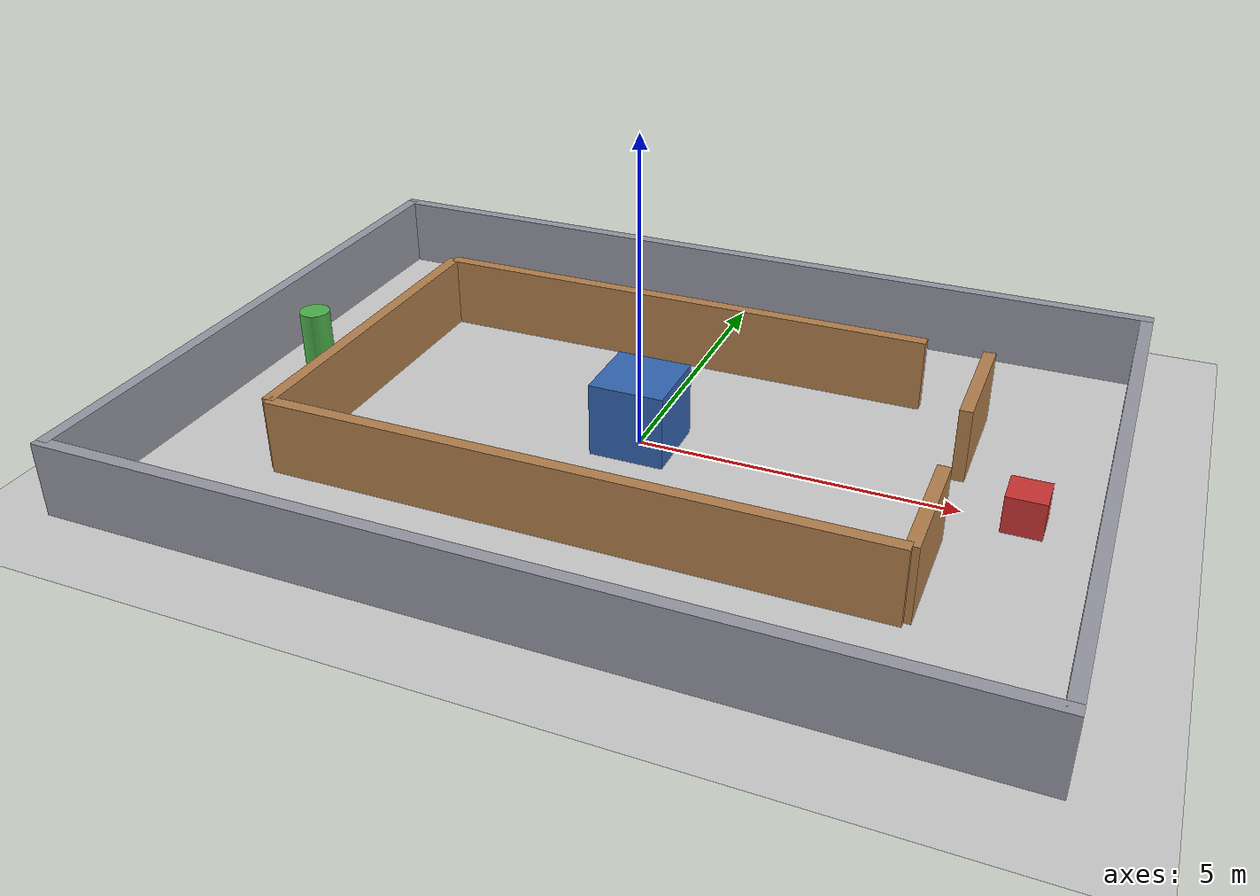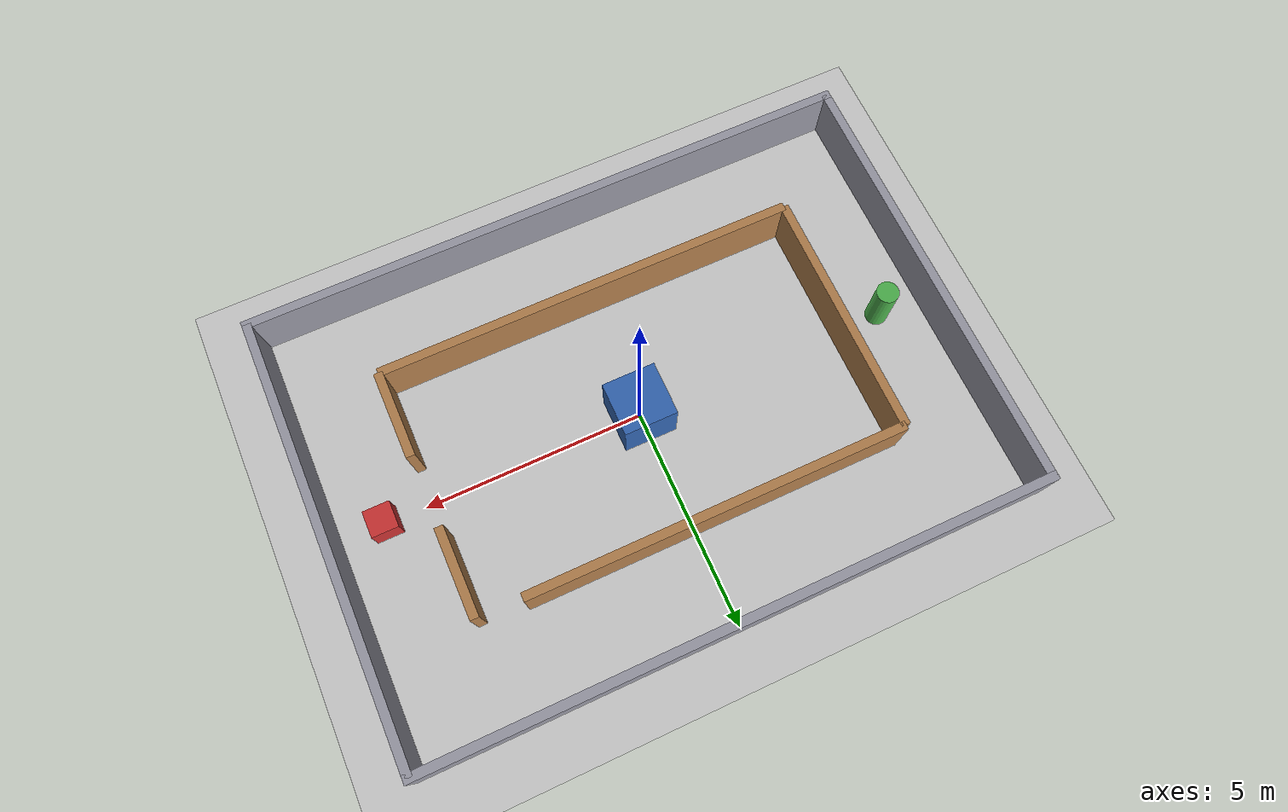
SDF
<?xml version="1.0" ?>
<sdf version="1.6">
  <world name="world_b_corridor">
    <include>
      <uri>model://sun</uri>
    </include>
    <include>
      <uri>model://ground_plane</uri>
    </include>

    <physics type="ode">
      <real_time_update_rate>1000.0</real_time_update_rate>
      <max_step_size>0.001</max_step_size>
      <real_time_factor>1.0</real_time_factor>
    </physics>

    <!-- ================= DINDING KELILING LUAR (14m x 10m x 1.2m) ================= -->
    <!-- Dinding Luar Utara -->
    <model name="outer_north">
      <static>true</static>
      <pose>0 5.0 0.6 0 0 0</pose>
      <link name="link">
        <collision name="c"><geometry><box><size>14.2 0.2 1.2</size></box></geometry></collision>
        <visual name="v">
          <geometry><box><size>14.2 0.2 1.2</size></box></geometry>
          <material><ambient>0.6 0.6 0.65 1</ambient><diffuse>0.6 0.6 0.65 1</diffuse></material>
        </visual>
      </link>
    </model>

    <!-- Dinding Luar Selatan -->
    <model name="outer_south">
      <static>true</static>
      <pose>0 -5.0 0.6 0 0 0</pose>
      <link name="link">
        <collision name="c"><geometry><box><size>14.2 0.2 1.2</size></box></geometry></collision>
        <visual name="v">
          <geometry><box><size>14.2 0.2 1.2</size></box></geometry>
          <material><ambient>0.6 0.6 0.65 1</ambient><diffuse>0.6 0.6 0.65 1</diffuse></material>
        </visual>
      </link>
    </model>

    <!-- Dinding Luar Timur -->
    <model name="outer_east">
      <static>true</static>
      <pose>7.0 0 0.6 0 0 0</pose>
      <link name="link">
        <collision name="c"><geometry><box><size>0.2 10.0 1.2</size></box></geometry></collision>
        <visual name="v">
          <geometry><box><size>0.2 10.0 1.2</size></box></geometry>
          <material><ambient>0.6 0.6 0.65 1</ambient><diffuse>0.6 0.6 0.65 1</diffuse></material>
        </visual>
      </link>
    </model>

    <!-- Dinding Luar Barat -->
    <model name="outer_west">
      <static>true</static>
      <pose>-7.0 0 0.6 0 0 0</pose>
      <link name="link">
        <collision name="c"><geometry><box><size>0.2 10.0 1.2</size></box></geometry></collision>
        <visual name="v">
          <geometry><box><size>0.2 10.0 1.2</size></box></geometry>
          <material><ambient>0.6 0.6 0.65 1</ambient><diffuse>0.6 0.6 0.65 1</diffuse></material>
        </visual>
      </link>
    </model>

    <!-- ================= PARTISI LORONG DAN RUANGAN (CORRIDOR CIRCUITS) ================= -->
    <!-- Blok Tengah (Membentuk lorong keliling dengan lebar ~2m) -->
    <!-- Dinding Tengah Bagian Bawah -->
    <model name="inner_wall_south">
      <static>true</static>
      <pose>0 -2.8 0.6 0 0 0</pose>
      <link name="link">
        <collision name="c"><geometry><box><size>9.6 0.2 1.2</size></box></geometry></collision>
        <visual name="v">
          <geometry><box><size>9.6 0.2 1.2</size></box></geometry>
          <material><ambient>0.7 0.5 0.3 1</ambient><diffuse>0.7 0.5 0.3 1</diffuse></material>
        </visual>
      </link>
    </model>

    <!-- Dinding Tengah Bagian Atas -->
    <model name="inner_wall_north">
      <static>true</static>
      <pose>-0.5 2.8 0.6 0 0 0</pose>
      <link name="link">
        <collision name="c"><geometry><box><size>8.6 0.2 1.2</size></box></geometry></collision>
        <visual name="v">
          <geometry><box><size>8.6 0.2 1.2</size></box></geometry>
          <material><ambient>0.7 0.5 0.3 1</ambient><diffuse>0.7 0.5 0.3 1</diffuse></material>
        </visual>
      </link>
    </model>

    <!-- Dinding Penyekat Vertikal Tengah Kiri -->
    <model name="inner_wall_mid_west">
      <static>true</static>
      <pose>-4.8 0 0.6 0 0 0</pose>
      <link name="link">
        <collision name="c"><geometry><box><size>0.2 5.6 1.2</size></box></geometry></collision>
        <visual name="v">
          <geometry><box><size>0.2 5.6 1.2</size></box></geometry>
          <material><ambient>0.7 0.5 0.3 1</ambient><diffuse>0.7 0.5 0.3 1</diffuse></material>
        </visual>
      </link>
    </model>

    <!-- Dinding Penyekat Vertikal Tengah Kanan (dengan Celah Pintu) -->
    <model name="inner_wall_mid_east_1">
      <static>true</static>
      <pose>4.8 1.8 0.6 0 0 0</pose>
      <link name="link">
        <collision name="c"><geometry><box><size>0.2 2.0 1.2</size></box></geometry></collision>
        <visual name="v">
          <geometry><box><size>0.2 2.0 1.2</size></box></geometry>
          <material><ambient>0.7 0.5 0.3 1</ambient><diffuse>0.7 0.5 0.3 1</diffuse></material>
        </visual>
      </link>
    </model>

    <model name="inner_wall_mid_east_2">
      <static>true</static>
      <pose>4.8 -1.8 0.6 0 0 0</pose>
      <link name="link">
        <collision name="c"><geometry><box><size>0.2 2.0 1.2</size></box></geometry></collision>
        <visual name="v">
          <geometry><box><size>0.2 2.0 1.2</size></box></geometry>
          <material><ambient>0.7 0.5 0.3 1</ambient><diffuse>0.7 0.5 0.3 1</diffuse></material>
        </visual>
      </link>
    </model>
    <!-- Celah pintu selebar 1.6m berada di X=4.8, Y=0 -->

    <!-- Pilar Tengah Ruang Dalam -->
    <model name="central_pillar">
      <static>true</static>
      <pose>0 0 0.6 0 0 0</pose>
      <link name="link">
        <collision name="c"><geometry><box><size>1.2 1.2 1.2</size></box></geometry></collision>
        <visual name="v">
          <geometry><box><size>1.2 1.2 1.2</size></box></geometry>
          <material><ambient>0.2 0.4 0.7 1</ambient><diffuse>0.2 0.4 0.7 1</diffuse></material>
        </visual>
      </link>
    </model>

    <!-- Pilar Lorong Barat -->
    <model name="corridor_pillar_west">
      <static>true</static>
      <pose>-5.9 0 0.6 0 0 0</pose>
      <link name="link">
        <collision name="c"><geometry><cylinder><radius>0.25</radius><length>1.2</length></cylinder></geometry></collision>
        <visual name="v">
          <geometry><cylinder><radius>0.25</radius><length>1.2</length></cylinder></geometry>
          <material><ambient>0.3 0.7 0.3 1</ambient><diffuse>0.3 0.7 0.3 1</diffuse></material>
        </visual>
      </link>
    </model>

    <!-- Rintangan Statis di Lorong Timur (Kotak Pengujian Navigasi) -->
    <model name="corridor_obstacle_east">
      <static>true</static>
      <pose>5.9 0 0.3 0 0 0</pose>
      <link name="link">
        <collision name="c"><geometry><box><size>0.6 0.6 0.6</size></box></geometry></collision>
        <visual name="v">
          <geometry><box><size>0.6 0.6 0.6</size></box></geometry>
          <material><ambient>0.8 0.2 0.2 1</ambient><diffuse>0.8 0.2 0.2 1</diffuse></material>
        </visual>
      </link>
    </model>

  </world>
</sdf>
